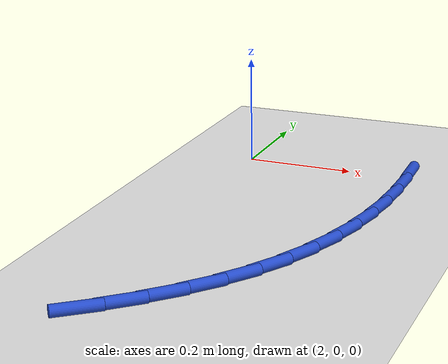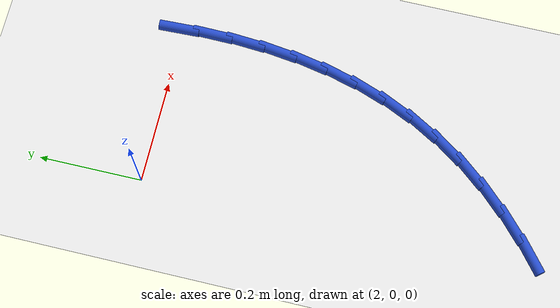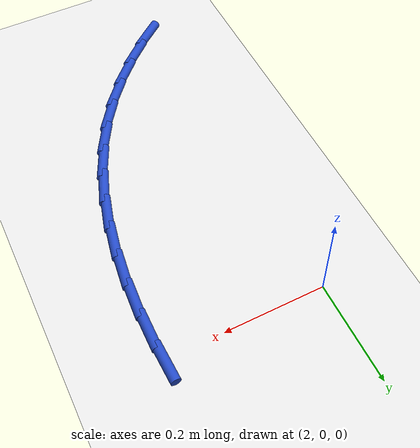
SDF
<sdf version="1.6">
 <world name="default">
  <model name="ground_plane">
   <static>1</static>
   <link name="link">
    <collision name="collision">
     <geometry><plane><normal>0 0 1</normal><size>100 100</size></plane></geometry>
     <surface><friction><ode><mu>100</mu><mu2>50</mu2></ode></friction></surface>
    </collision>
    <visual name="visual">
     <cast_shadows>0</cast_shadows>
     <geometry><plane><normal>0 0 1</normal><size>100 100</size></plane></geometry>
     <material>
      <script><uri>file://media/materials/scripts/gazebo.material</uri><name>Gazebo/WhiteGlow</name></script>
     </material>
    </visual>
   </link>
  </model>
  <model name="line">
   <link name="link_56">
    <pose>2.3152280084486567 0.007908615497558297 0.01 0 1.57 -1.5352833327162685</pose>
    <collision name="collision">
     <geometry><cylinder><radius>0.01</radius><length>0.08</length></cylinder></geometry>
    </collision>
    <visual name="visual">
     <material>
      <script><name>Gazebo/Blue</name><uri>file://media/materials/scripts/gazebo.material</uri></script>
     </material>
     <geometry><cylinder><radius>0.01</radius><length>0.08</length></cylinder></geometry>
    </visual>
   </link>
   <link name="link_57">
    <pose>2.3176228827024157 -0.05949959515397089 0.01 0 1.57 1.555520475082408</pose>
    <collision name="collision">
     <geometry><cylinder><radius>0.01</radius><length>0.08</length></cylinder></geometry>
    </collision>
    <visual name="visual">
     <material>
      <script><name>Gazebo/Blue</name><uri>file://media/materials/scripts/gazebo.material</uri></script>
     </material>
     <geometry><cylinder><radius>0.01</radius><length>0.08</length></cylinder></geometry>
    </visual>
   </link>
   <link name="link_58">
    <pose>2.316605164807101 -0.12611707424371504 0.01 0 1.57 1.4998904744270887</pose>
    <collision name="collision">
     <geometry><cylinder><radius>0.01</radius><length>0.08</length></cylinder></geometry>
    </collision>
    <visual name="visual">
     <material>
      <script><name>Gazebo/Blue</name><uri>file://media/materials/scripts/gazebo.material</uri></script>
     </material>
     <geometry><cylinder><radius>0.01</radius><length>0.08</length></cylinder></geometry>
    </visual>
   </link>
   <link name="link_59">
    <pose>2.3119474753831346 -0.19169531528795702 0.01 0 1.57 1.438963545786802</pose>
    <collision name="collision">
     <geometry><cylinder><radius>0.01</radius><length>0.08</length></cylinder></geometry>
    </collision>
    <visual name="visual">
     <material>
      <script><name>Gazebo/Blue</name><uri>file://media/materials/scripts/gazebo.material</uri></script>
     </material>
     <geometry><cylinder><radius>0.01</radius><length>0.08</length></cylinder></geometry>
    </visual>
   </link>
   <link name="link_60">
    <pose>2.30342243505094 -0.2559858118029766 0.01 0 1.57 1.372344955136924</pose>
    <collision name="collision">
     <geometry><cylinder><radius>0.01</radius><length>0.08</length></cylinder></geometry>
    </collision>
    <visual name="visual">
     <material>
      <script><name>Gazebo/Blue</name><uri>file://media/materials/scripts/gazebo.material</uri></script>
     </material>
     <geometry><cylinder><radius>0.01</radius><length>0.08</length></cylinder></geometry>
    </visual>
   </link>
   <link name="link_61">
    <pose>2.290802664430938 -0.31874005730505633 0.01 0 1.57 1.2997594673808364</pose>
    <collision name="collision">
     <geometry><cylinder><radius>0.01</radius><length>0.08</length></cylinder></geometry>
    </collision>
    <visual name="visual">
     <material>
      <script><name>Gazebo/Blue</name><uri>file://media/materials/scripts/gazebo.material</uri></script>
     </material>
     <geometry><cylinder><radius>0.01</radius><length>0.08</length></cylinder></geometry>
    </visual>
   </link>
   <link name="link_62">
    <pose>2.2738607841435523 -0.37970954531047596 0.01 0 1.57 1.2211262372524287</pose>
    <collision name="collision">
     <geometry><cylinder><radius>0.01</radius><length>0.08</length></cylinder></geometry>
    </collision>
    <visual name="visual">
     <material>
      <script><name>Gazebo/Blue</name><uri>file://media/materials/scripts/gazebo.material</uri></script>
     </material>
     <geometry><cylinder><radius>0.01</radius><length>0.08</length></cylinder></geometry>
    </visual>
   </link>
   <link name="link_63">
    <pose>2.2523694148092037 -0.43864576933551835 0.01 0 1.57 1.1366434022355891</pose>
    <collision name="collision">
     <geometry><cylinder><radius>0.01</radius><length>0.08</length></cylinder></geometry>
    </collision>
    <visual name="visual">
     <material>
      <script><name>Gazebo/Blue</name><uri>file://media/materials/scripts/gazebo.material</uri></script>
     </material>
     <geometry><cylinder><radius>0.01</radius><length>0.08</length></cylinder></geometry>
    </visual>
   </link>
   <link name="link_64">
    <pose>2.226101177048315 -0.495300222896463 0.01 0 1.57 1.0469873037457886</pose>
    <collision name="collision">
     <geometry><cylinder><radius>0.01</radius><length>0.08</length></cylinder></geometry>
    </collision>
    <visual name="visual">
     <material>
      <script><name>Gazebo/Blue</name><uri>file://media/materials/scripts/gazebo.material</uri></script>
     </material>
     <geometry><cylinder><radius>0.01</radius><length>0.08</length></cylinder></geometry>
    </visual>
   </link>
   <link name="link_65">
    <pose>2.1948356640325524 -0.5494273955581536 0.01 0 1.57 0.9578858220100477</pose>
    <collision name="collision">
     <geometry><cylinder><radius>0.01</radius><length>0.08</length></cylinder></geometry>
    </collision>
    <visual name="visual">
     <material>
      <script><name>Gazebo/Blue</name><uri>file://media/materials/scripts/gazebo.material</uri></script>
     </material>
     <geometry><cylinder><radius>0.01</radius><length>0.08</length></cylinder></geometry>
    </visual>
   </link>
   <link name="link_66">
    <pose>2.158634852121996 -0.6009031146448619 0.01 0 1.57 0.8762578488725143</pose>
    <collision name="collision">
     <geometry><cylinder><radius>0.01</radius><length>0.08</length></cylinder></geometry>
    </collision>
    <visual name="visual">
     <material>
      <script><name>Gazebo/Blue</name><uri>file://media/materials/scripts/gazebo.material</uri></script>
     </material>
     <geometry><cylinder><radius>0.01</radius><length>0.08</length></cylinder></geometry>
    </visual>
   </link>
   <link name="link_67">
    <pose>2.117934233148023 -0.6497637040410604 0.01 0 1.57 0.8024621031239688</pose>
    <collision name="collision">
     <geometry><cylinder><radius>0.01</radius><length>0.08</length></cylinder></geometry>
    </collision>
    <visual name="visual">
     <material>
      <script><name>Gazebo/Blue</name><uri>file://media/materials/scripts/gazebo.material</uri></script>
     </material>
     <geometry><cylinder><radius>0.01</radius><length>0.08</length></cylinder></geometry>
    </visual>
   </link>
   <link name="link_68">
    <pose>2.073194946088298 -0.696056508001393 0.01 0 1.57 0.7360897664746155</pose>
    <collision name="collision">
     <geometry><cylinder><radius>0.01</radius><length>0.08</length></cylinder></geometry>
    </collision>
    <visual name="visual">
     <material>
      <script><name>Gazebo/Blue</name><uri>file://media/materials/scripts/gazebo.material</uri></script>
     </material>
     <geometry><cylinder><radius>0.01</radius><length>0.08</length></cylinder></geometry>
    </visual>
   </link>
   <link name="link_69">
    <pose>2.0248781299204834 -0.7398288707805009 0.01 0 1.57 0.6765486362366494</pose>
    <collision name="collision">
     <geometry><cylinder><radius>0.01</radius><length>0.08</length></cylinder></geometry>
    </collision>
    <visual name="visual">
     <material>
      <script><name>Gazebo/Blue</name><uri>file://media/materials/scripts/gazebo.material</uri></script>
     </material>
     <geometry><cylinder><radius>0.01</radius><length>0.08</length></cylinder></geometry>
    </visual>
   </link>
  </model>
 </world>
</sdf>
